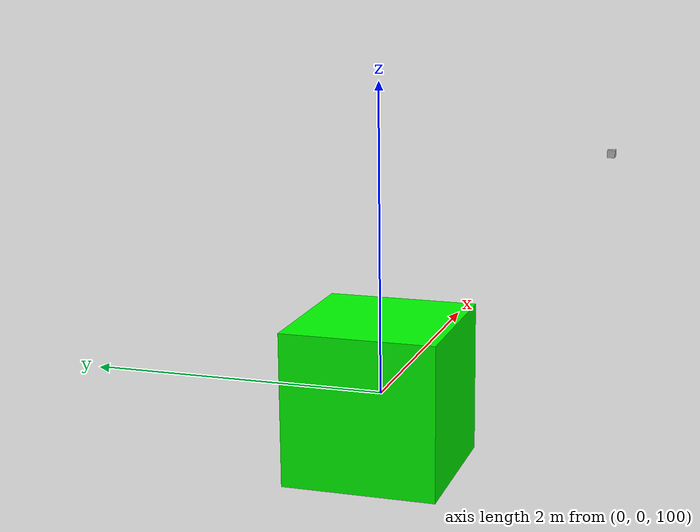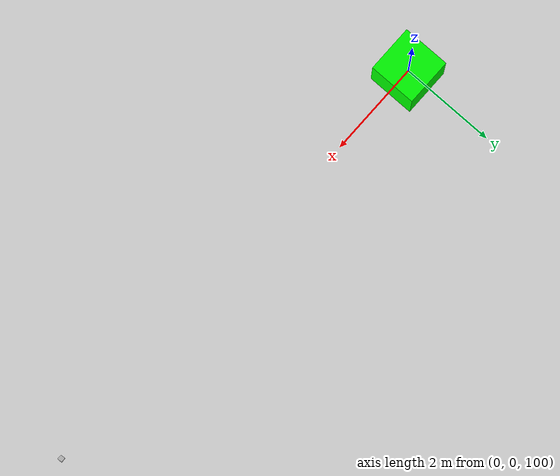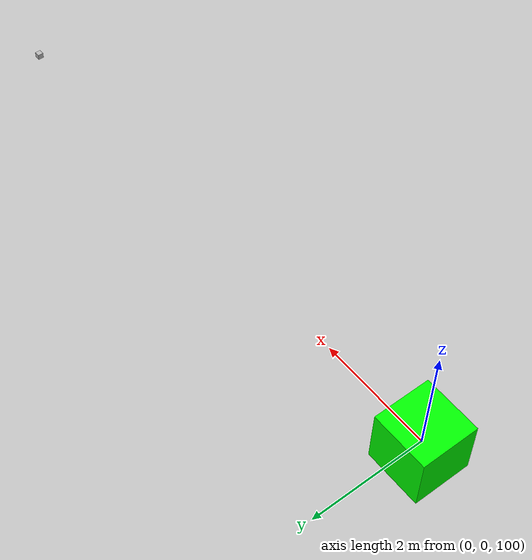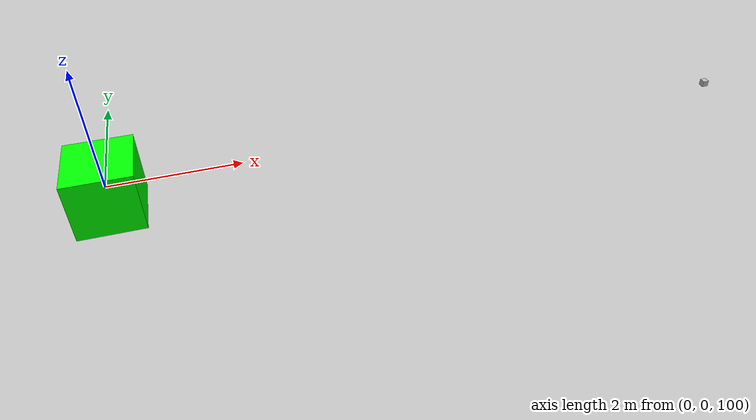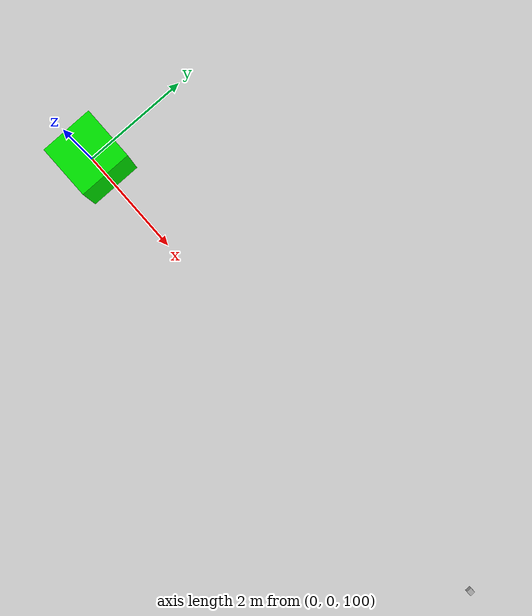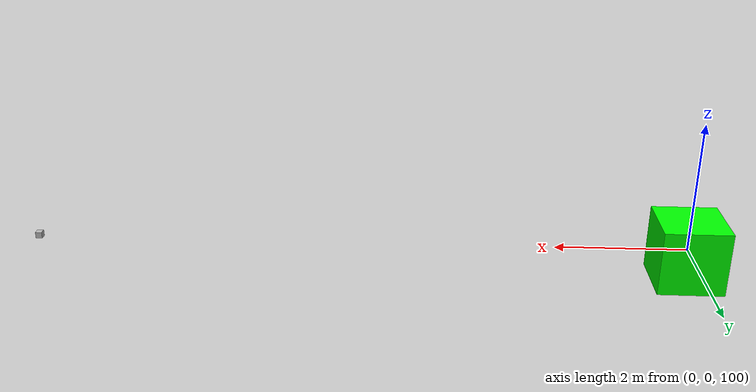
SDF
<?xml version="1.0" ?>
<sdf version="1.6">
  <world name="default">
    <plugin
      filename="gz-sim-apply-link-wrench-system"
      name="gz::sim::systems::ApplyLinkWrench">
    </plugin>

    <gz:policies>
      <include_server_config_plugins>false</include_server_config_plugins>
    </gz:policies>
    <plugin
      filename="gz-sim-air-pressure-system"
      name="gz::sim::systems::AirPressure">
    </plugin>
    <plugin
      filename="gz-sim-physics-system"
      name="gz::sim::systems::Physics">
    </plugin>
    <plugin
      filename="gz-sim-scene-broadcaster-system"
      name="gz::sim::systems::SceneBroadcaster">
    </plugin>
    <plugin
      filename="gz-sim-sensors-system"
      name="gz::sim::systems::Sensors">
      <render_engine>ogre2</render_engine>
    </plugin>
    <plugin
      filename="gz-sim-user-commands-system"
      name="gz::sim::systems::UserCommands">
    </plugin>

    <model name="ground_plane">
      <static>true</static>
      <link name="link">
        <collision name="collision">
          <geometry>
            <plane>
              <normal>0 0 1</normal>
              <size>100 100</size>
            </plane>
          </geometry>
        </collision>
        <visual name="visual">
          <geometry>
            <plane>
              <normal>0 0 1</normal>
              <size>100 100</size>
            </plane>
          </geometry>
          <material>
            <ambient>0.8 0.8 0.8 1</ambient>
            <diffuse>0.8 0.8 0.8 1</diffuse>
            <specular>0.8 0.8 0.8 1</specular>
          </material>
        </visual>
      </link>
    </model>

    <model name="box">
      <pose>0 0 100.0 0 0 0</pose>
      <static>false</static>
      <link name="link">
        <inertial>
          <mass>600</mass>
          <inertia>
            <ixx>100</ixx>
            <ixy>0</ixy>
            <ixz>0</ixz>
            <iyy>100</iyy>
            <iyz>0</iyz>
            <izz>100</izz>
          </inertia>
        </inertial>
        <collision name="collision_0">
          <geometry>
            <box><size>1 1 1</size></box>
          </geometry>
        </collision>
        <visual name="visual_0">
          <geometry>
            <box><size>1 1 1</size></box>
          </geometry>
          <material>
            <ambient>0 1 0 1.0</ambient>
            <diffuse>0 1 0 1.0</diffuse>
            <specular>0 1 0 1.0</specular>
          </material>
        </visual>
        <sensor name="air_pressure_sensor" type="air_pressure">
          <always_on>1</always_on>
          <update_rate>100</update_rate>
          <visualize>true</visualize>
          <air_pressure>
            <reference_altitude>0</reference_altitude>
            <pressure>
              <noise type="gaussian">
                <mean>0</mean>
                <stddev>0</stddev>
              </noise>
            </pressure>
          </air_pressure>
        </sensor>
      </link>
    </model>

    <model name="camera">
      <static>true</static>
      <pose>10 0 100 0 0 -3.1415</pose>
      <link name="link">
        <collision name="collision">
          <geometry>
            <box>
              <size>0.1 0.1 0.1</size>
            </box>
          </geometry>
        </collision>
        <visual name="visual">
          <geometry>
            <box>
              <size>0.1 0.1 0.1</size>
            </box>
          </geometry>
        </visual>
        <sensor name="camera" type="camera">
          <pose>0 0 0 0 0 0</pose>
          <camera>
            <horizontal_fov>1.047</horizontal_fov>
            <image>
              <width>200</width>
              <height>200</height>
            </image>
            <clip>
              <near>0.1</near>
              <far>100</far>
            </clip>
          </camera>
          <update_rate>10</update_rate>
          <topic>camera</topic>
        </sensor>
      </link>
    </model>
  </world>
</sdf>
